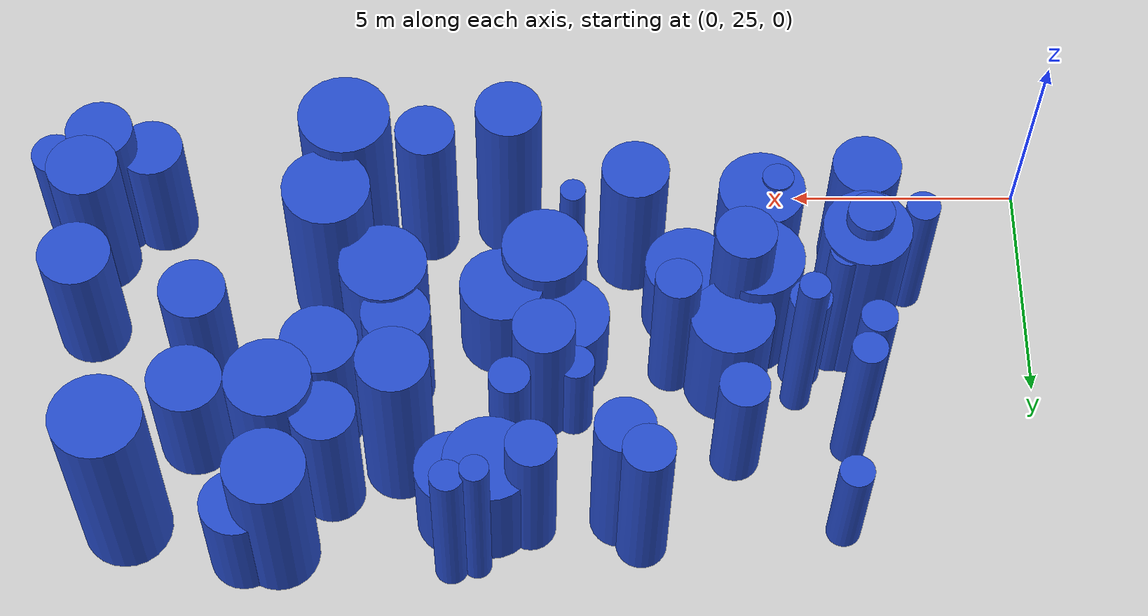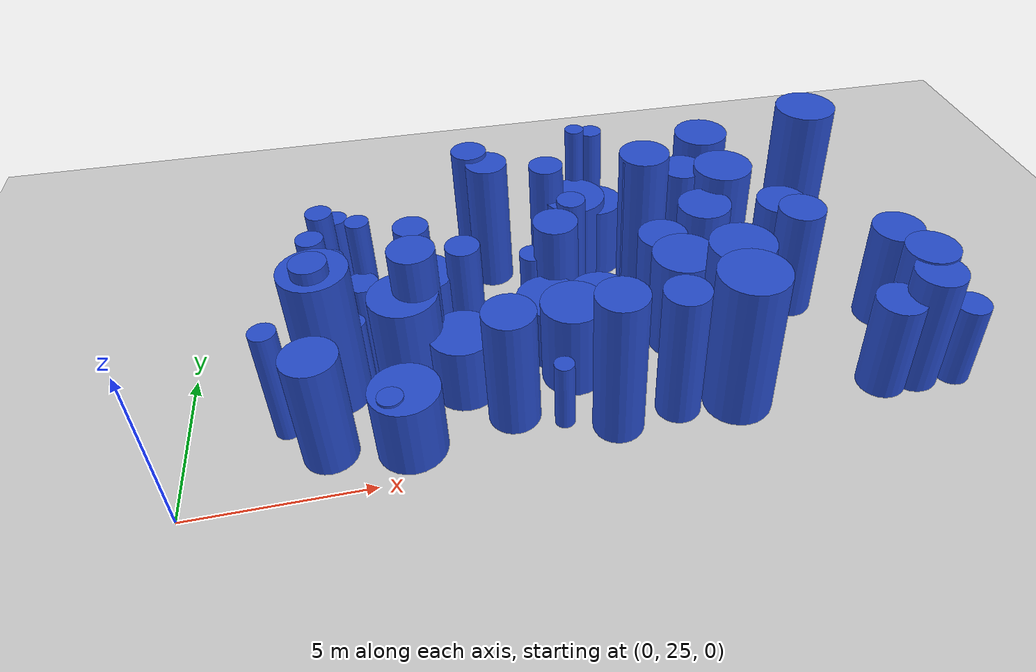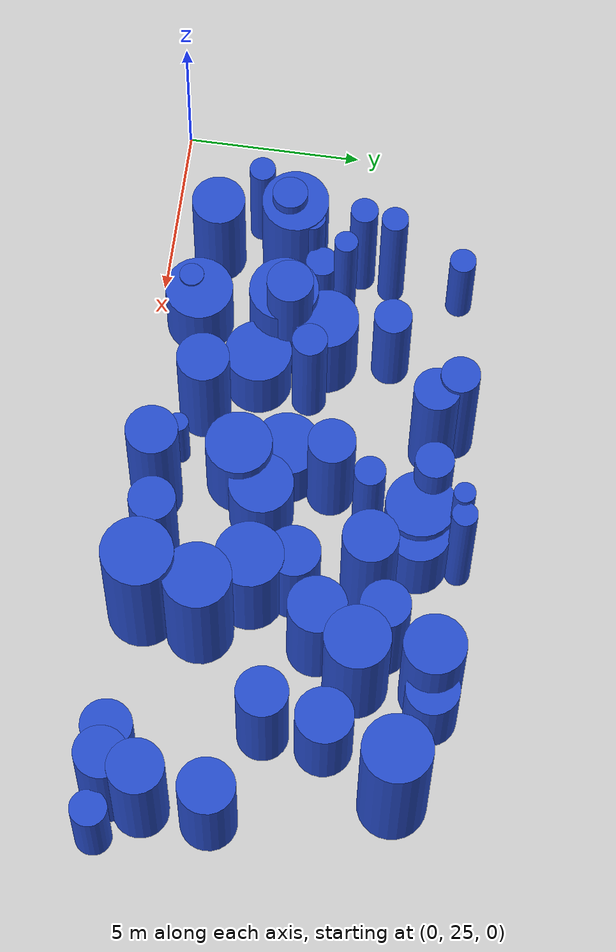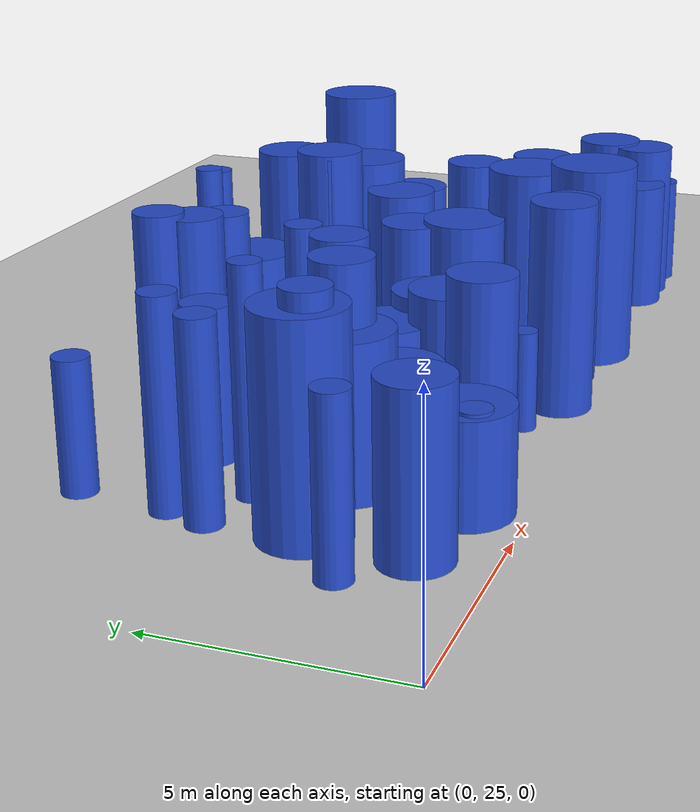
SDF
<sdf version="1.6">
 <world name="default">
  <model name="ground_plane">
   <static>1</static>
   <link name="link">
    <collision name="collision">
     <geometry><plane><normal>0 0 1</normal><size>100 100</size></plane></geometry>
     <surface><friction><ode><mu>100</mu><mu2>50</mu2></ode></friction></surface>
    </collision>
    <visual name="visual">
     <cast_shadows>0</cast_shadows>
     <geometry><plane><normal>0 0 1</normal><size>100 100</size></plane></geometry>
     <material>
      <script><uri>file://media/materials/scripts/gazebo.material</uri><name>Gazebo/Grey</name></script>
     </material>
    </visual>
   </link>
  </model>
  <model name="12">
   <static>0</static>
   <link name="link">
    <inertial>
     <mass>2</mass>
     <inertia><ixx>1.27619</ixx><ixy>0</ixy><ixz>0</ixz><iyy>1.27619</iyy><iyz>0</iyz><izz>0.925435</izz></inertia>
    </inertial>
    <collision name="collision">
     <geometry><cylinder><length>2.20927</length><radius>0.961995</radius></cylinder></geometry>
     <surface><contact><collide_without_contact>1</collide_without_contact></contact></surface>
    </collision>
    <visual name="visual">
     <geometry><cylinder><length>2.20927</length><radius>0.961995</radius></cylinder></geometry>
     <material>
      <script><uri>file://media/materials/scripts/gazebo.material</uri><name>Gazebo/Blue</name></script>
     </material>
    </visual>
    <gravity>0</gravity>
   </link>
   <pose>5.95857 26.1958 1.10463 0 -0 0</pose>
  </model>
  <model name="17">
   <static>0</static>
   <link name="link">
    <inertial>
     <mass>2</mass>
     <inertia><ixx>2.36762</ixx><ixy>0</ixy><ixz>0</ixz><iyy>2.36762</iyy><iyz>0</iyz><izz>0.56369</izz></inertia>
    </inertial>
    <collision name="collision">
     <geometry><cylinder><length>3.53761</length><radius>0.750793</radius></cylinder></geometry>
     <surface><contact><collide_without_contact>1</collide_without_contact></contact></surface>
    </collision>
    <visual name="visual">
     <geometry><cylinder><length>3.53761</length><radius>0.750793</radius></cylinder></geometry>
     <material>
      <script><uri>file://media/materials/scripts/gazebo.material</uri><name>Gazebo/Blue</name></script>
     </material>
    </visual>
    <gravity>0</gravity>
   </link>
   <pose>3.8069 26.4539 1.7688 0 -0 0</pose>
  </model>
  <model name="19">
   <static>0</static>
   <link name="link">
    <inertial>
     <mass>2</mass>
     <inertia><ixx>1.67962</ixx><ixy>0</ixy><ixz>0</ixz><iyy>1.67962</iyy><iyz>0</iyz><izz>0.646256</izz></inertia>
    </inertial>
    <collision name="collision">
     <geometry><cylinder><length>2.85288</length><radius>0.803901</radius></cylinder></geometry>
     <surface><contact><collide_without_contact>1</collide_without_contact></contact></surface>
    </collision>
    <visual name="visual">
     <geometry><cylinder><length>2.85288</length><radius>0.803901</radius></cylinder></geometry>
     <material>
      <script><uri>file://media/materials/scripts/gazebo.material</uri><name>Gazebo/Blue</name></script>
     </material>
    </visual>
    <gravity>0</gravity>
   </link>
   <pose>18.2862 31.439 1.42644 0 -0 0</pose>
  </model>
  <model name="31">
   <static>0</static>
   <link name="link">
    <inertial>
     <mass>2</mass>
     <inertia><ixx>4.54322</ixx><ixy>0</ixy><ixz>0</ixz><iyy>4.54322</iyy><iyz>0</iyz><izz>0.904882</izz></inertia>
    </inertial>
    <collision name="collision">
     <geometry><cylinder><length>4.95426</length><radius>0.951253</radius></cylinder></geometry>
     <surface><contact><collide_without_contact>1</collide_without_contact></contact></surface>
    </collision>
    <visual name="visual">
     <geometry><cylinder><length>4.95426</length><radius>0.951253</radius></cylinder></geometry>
     <material>
      <script><uri>file://media/materials/scripts/gazebo.material</uri><name>Gazebo/Blue</name></script>
     </material>
    </visual>
    <gravity>0</gravity>
   </link>
   <pose>19.6267 33.4845 2.47713 0 -0 0</pose>
  </model>
  <model name="38">
   <static>0</static>
   <link name="link">
    <inertial>
     <mass>2</mass>
     <inertia>
      <ixx>0.928398</ixx>
      <ixy>0</ixy>
      <ixz>0</ixz>
      <iyy>0.928398</iyy>
      <iyz>0</iyz>
      <izz>0.123325</izz>
     </inertia>
    </inertial>
    <collision name="collision">
     <geometry><cylinder><length>2.28044</length><radius>0.351177</radius></cylinder></geometry>
     <surface><contact><collide_without_contact>1</collide_without_contact></contact></surface>
    </collision>
    <visual name="visual">
     <geometry><cylinder><length>2.28044</length><radius>0.351177</radius></cylinder></geometry>
     <material>
      <script><uri>file://media/materials/scripts/gazebo.material</uri><name>Gazebo/Blue</name></script>
     </material>
    </visual>
    <gravity>0</gravity>
   </link>
   <pose>5.59868 25.9297 1.14022 0 -0 0</pose>
  </model>
  <model name="43">
   <static>0</static>
   <link name="link">
    <inertial>
     <mass>2</mass>
     <inertia><ixx>1.11898</ixx><ixy>0</ixy><ixz>0</ixz><iyy>1.11898</iyy><iyz>0</iyz><izz>0.887933</izz></inertia>
    </inertial>
    <collision name="collision">
     <geometry><cylinder><length>2.01248</length><radius>0.942302</radius></cylinder></geometry>
     <surface><contact><collide_without_contact>1</collide_without_contact></contact></surface>
    </collision>
    <visual name="visual">
     <geometry><cylinder><length>2.01248</length><radius>0.942302</radius></cylinder></geometry>
     <material>
      <script><uri>file://media/materials/scripts/gazebo.material</uri><name>Gazebo/Blue</name></script>
     </material>
    </visual>
    <gravity>0</gravity>
   </link>
   <pose>10.2971 29.319 1.00624 0 -0 0</pose>
  </model>
  <model name="52">
   <static>0</static>
   <link name="link">
    <inertial>
     <mass>2</mass>
     <inertia>
      <ixx>3.67726</ixx>
      <ixy>0</ixy>
      <ixz>0</ixz>
      <iyy>3.67726</iyy>
      <iyz>0</iyz>
      <izz>0.0947076</izz>
     </inertia>
    </inertial>
    <collision name="collision">
     <geometry><cylinder><length>4.66685</length><radius>0.307746</radius></cylinder></geometry>
     <surface><contact><collide_without_contact>1</collide_without_contact></contact></surface>
    </collision>
    <visual name="visual">
     <geometry><cylinder><length>4.66685</length><radius>0.307746</radius></cylinder></geometry>
     <material>
      <script><uri>file://media/materials/scripts/gazebo.material</uri><name>Gazebo/Blue</name></script>
     </material>
    </visual>
    <gravity>0</gravity>
   </link>
   <pose>13.41 31.8865 2.33342 0 -0 0</pose>
  </model>
  <model name="53">
   <static>0</static>
   <link name="link">
    <inertial>
     <mass>2</mass>
     <inertia><ixx>2.60897</ixx><ixy>0</ixy><ixz>0</ixz><iyy>2.60897</iyy><iyz>0</iyz><izz>0.17796</izz></inertia>
    </inertial>
    <collision name="collision">
     <geometry><cylinder><length>3.88844</length><radius>0.421853</radius></cylinder></geometry>
     <surface><contact><collide_without_contact>1</collide_without_contact></contact></surface>
    </collision>
    <visual name="visual">
     <geometry><cylinder><length>3.88844</length><radius>0.421853</radius></cylinder></geometry>
     <material>
      <script><uri>file://media/materials/scripts/gazebo.material</uri><name>Gazebo/Blue</name></script>
     </material>
    </visual>
    <gravity>0</gravity>
   </link>
   <pose>16.5759 34.2285 1.94422 0 -0 0</pose>
  </model>
  <model name="61">
   <static>0</static>
   <link name="link">
    <inertial>
     <mass>2</mass>
     <inertia><ixx>2.9263</ixx><ixy>0</ixy><ixz>0</ixz><iyy>2.9263</iyy><iyz>0</iyz><izz>0.149705</izz></inertia>
    </inertial>
    <collision name="collision">
     <geometry><cylinder><length>4.13626</length><radius>0.386917</radius></cylinder></geometry>
     <surface><contact><collide_without_contact>1</collide_without_contact></contact></surface>
    </collision>
    <visual name="visual">
     <geometry><cylinder><length>4.13626</length><radius>0.386917</radius></cylinder></geometry>
     <material>
      <script><uri>file://media/materials/scripts/gazebo.material</uri><name>Gazebo/Blue</name></script>
     </material>
    </visual>
    <gravity>0</gravity>
   </link>
   <pose>3.87976 30.6038 2.06813 0 -0 0</pose>
  </model>
  <model name="65">
   <static>0</static>
   <link name="link">
    <inertial>
     <mass>2</mass>
     <inertia><ixx>4.07214</ixx><ixy>0</ixy><ixz>0</ixz><iyy>4.07214</iyy><iyz>0</iyz><izz>0.583035</izz></inertia>
    </inertial>
    <collision name="collision">
     <geometry><cylinder><length>4.76274</length><radius>0.763567</radius></cylinder></geometry>
     <surface><contact><collide_without_contact>1</collide_without_contact></contact></surface>
    </collision>
    <visual name="visual">
     <geometry><cylinder><length>4.76274</length><radius>0.763567</radius></cylinder></geometry>
     <material>
      <script><uri>file://media/materials/scripts/gazebo.material</uri><name>Gazebo/Blue</name></script>
     </material>
    </visual>
    <gravity>0</gravity>
   </link>
   <pose>13.8342 32.044 2.38137 0 -0 0</pose>
  </model>
  <model name="68">
   <static>0</static>
   <link name="link">
    <inertial>
     <mass>2</mass>
     <inertia><ixx>2.56035</ixx><ixy>0</ixy><ixz>0</ixz><iyy>2.56035</iyy><iyz>0</iyz><izz>0.482898</izz></inertia>
    </inertial>
    <collision name="collision">
     <geometry><cylinder><length>3.73007</length><radius>0.694909</radius></cylinder></geometry>
     <surface><contact><collide_without_contact>1</collide_without_contact></contact></surface>
    </collision>
    <visual name="visual">
     <geometry><cylinder><length>3.73007</length><radius>0.694909</radius></cylinder></geometry>
     <material>
      <script><uri>file://media/materials/scripts/gazebo.material</uri><name>Gazebo/Blue</name></script>
     </material>
    </visual>
    <gravity>0</gravity>
   </link>
   <pose>15.2838 32.6616 1.86504 0 -0 0</pose>
  </model>
  <model name="84">
   <static>0</static>
   <link name="link">
    <inertial>
     <mass>2</mass>
     <inertia><ixx>1.96542</ixx><ixy>0</ixy><ixz>0</ixz><iyy>1.96542</iyy><iyz>0</iyz><izz>0.55372</izz></inertia>
    </inertial>
    <collision name="collision">
     <geometry><cylinder><length>3.18298</length><radius>0.744123</radius></cylinder></geometry>
     <surface><contact><collide_without_contact>1</collide_without_contact></contact></surface>
    </collision>
    <visual name="visual">
     <geometry><cylinder><length>3.18298</length><radius>0.744123</radius></cylinder></geometry>
     <material>
      <script><uri>file://media/materials/scripts/gazebo.material</uri><name>Gazebo/Blue</name></script>
     </material>
    </visual>
    <gravity>0</gravity>
   </link>
   <pose>13.9097 30.0086 1.59149 0 -0 0</pose>
  </model>
  <model name="87">
   <static>0</static>
   <link name="link">
    <inertial>
     <mass>2</mass>
     <inertia><ixx>2.24731</ixx><ixy>0</ixy><ixz>0</ixz><iyy>2.24731</iyy><iyz>0</iyz><izz>0.904156</izz></inertia>
    </inertial>
    <collision name="collision">
     <geometry><cylinder><length>3.28198</length><radius>0.950871</radius></cylinder></geometry>
     <surface><contact><collide_without_contact>1</collide_without_contact></contact></surface>
    </collision>
    <visual name="visual">
     <geometry><cylinder><length>3.28198</length><radius>0.950871</radius></cylinder></geometry>
     <material>
      <script><uri>file://media/materials/scripts/gazebo.material</uri><name>Gazebo/Blue</name></script>
     </material>
    </visual>
    <gravity>0</gravity>
   </link>
   <pose>14.2112 28.8442 1.64099 0 -0 0</pose>
  </model>
  <model name="89">
   <static>0</static>
   <link name="link">
    <inertial>
     <mass>2</mass>
     <inertia><ixx>3.86103</ixx><ixy>0</ixy><ixz>0</ixz><iyy>3.86103</iyy><iyz>0</iyz><izz>0.517319</izz></inertia>
    </inertial>
    <collision name="collision">
     <geometry><cylinder><length>4.64911</length><radius>0.719249</radius></cylinder></geometry>
     <surface><contact><collide_without_contact>1</collide_without_contact></contact></surface>
    </collision>
    <visual name="visual">
     <geometry><cylinder><length>4.64911</length><radius>0.719249</radius></cylinder></geometry>
     <material>
      <script><uri>file://media/materials/scripts/gazebo.material</uri><name>Gazebo/Blue</name></script>
     </material>
    </visual>
    <gravity>0</gravity>
   </link>
   <pose>11.5608 25.8149 2.32455 0 -0 0</pose>
  </model>
  <model name="112">
   <static>0</static>
   <link name="link">
    <inertial>
     <mass>2</mass>
     <inertia><ixx>2.22524</ixx><ixy>0</ixy><ixz>0</ixz><iyy>2.22524</iyy><iyz>0</iyz><izz>0.133987</izz></inertia>
    </inertial>
    <collision name="collision">
     <geometry><cylinder><length>3.59854</length><radius>0.366043</radius></cylinder></geometry>
     <surface><contact><collide_without_contact>1</collide_without_contact></contact></surface>
    </collision>
    <visual name="visual">
     <geometry><cylinder><length>3.59854</length><radius>0.366043</radius></cylinder></geometry>
     <material>
      <script><uri>file://media/materials/scripts/gazebo.material</uri><name>Gazebo/Blue</name></script>
     </material>
    </visual>
    <gravity>0</gravity>
   </link>
   <pose>2.67065 27.5483 1.79927 0 -0 0</pose>
  </model>
  <model name="115">
   <static>0</static>
   <link name="link">
    <inertial>
     <mass>2</mass>
     <inertia><ixx>3.11202</ixx><ixy>0</ixy><ixz>0</ixz><iyy>3.11202</iyy><iyz>0</iyz><izz>0.73503</izz></inertia>
    </inertial>
    <collision name="collision">
     <geometry><cylinder><length>4.05796</length><radius>0.857339</radius></cylinder></geometry>
     <surface><contact><collide_without_contact>1</collide_without_contact></contact></surface>
    </collision>
    <visual name="visual">
     <geometry><cylinder><length>4.05796</length><radius>0.857339</radius></cylinder></geometry>
     <material>
      <script><uri>file://media/materials/scripts/gazebo.material</uri><name>Gazebo/Blue</name></script>
     </material>
    </visual>
    <gravity>0</gravity>
   </link>
   <pose>16.3497 34.101 2.02898 0 -0 0</pose>
  </model>
  <model name="117">
   <static>0</static>
   <link name="link">
    <inertial>
     <mass>2</mass>
     <inertia><ixx>2.7452</ixx><ixy>0</ixy><ixz>0</ixz><iyy>2.7452</iyy><iyz>0</iyz><izz>0.535852</izz></inertia>
    </inertial>
    <collision name="collision">
     <geometry><cylinder><length>3.85534</length><radius>0.732019</radius></cylinder></geometry>
     <surface><contact><collide_without_contact>1</collide_without_contact></contact></surface>
    </collision>
    <visual name="visual">
     <geometry><cylinder><length>3.85534</length><radius>0.732019</radius></cylinder></geometry>
     <material>
      <script><uri>file://media/materials/scripts/gazebo.material</uri><name>Gazebo/Blue</name></script>
     </material>
    </visual>
    <gravity>0</gravity>
   </link>
   <pose>20.4326 25.8517 1.92767 0 -0 0</pose>
  </model>
  <model name="123">
   <static>0</static>
   <link name="link">
    <inertial>
     <mass>2</mass>
     <inertia><ixx>3.08274</ixx><ixy>0</ixy><ixz>0</ixz><iyy>3.08274</iyy><iyz>0</iyz><izz>0.826748</izz></inertia>
    </inertial>
    <collision name="collision">
     <geometry><cylinder><length>4.00202</length><radius>0.909257</radius></cylinder></geometry>
     <surface><contact><collide_without_contact>1</collide_without_contact></contact></surface>
    </collision>
    <visual name="visual">
     <geometry><cylinder><length>4.00202</length><radius>0.909257</radius></cylinder></geometry>
     <material>
      <script><uri>file://media/materials/scripts/gazebo.material</uri><name>Gazebo/Blue</name></script>
     </material>
    </visual>
    <gravity>0</gravity>
   </link>
   <pose>16.4086 32.052 2.00101 0 -0 0</pose>
  </model>
  <model name="135">
   <static>0</static>
   <link name="link">
    <inertial>
     <mass>2</mass>
     <inertia><ixx>2.66442</ixx><ixy>0</ixy><ixz>0</ixz><iyy>2.66442</iyy><iyz>0</iyz><izz>0.539051</izz></inertia>
    </inertial>
    <collision name="collision">
     <geometry><cylinder><length>3.7907</length><radius>0.734201</radius></cylinder></geometry>
     <surface><contact><collide_without_contact>1</collide_without_contact></contact></surface>
    </collision>
    <visual name="visual">
     <geometry><cylinder><length>3.7907</length><radius>0.734201</radius></cylinder></geometry>
     <material>
      <script><uri>file://media/materials/scripts/gazebo.material</uri><name>Gazebo/Blue</name></script>
     </material>
    </visual>
    <gravity>0</gravity>
   </link>
   <pose>8.82373 26.7736 1.89535 0 -0 0</pose>
  </model>
  <model name="151">
   <static>0</static>
   <link name="link">
    <inertial>
     <mass>2</mass>
     <inertia><ixx>2.48162</ixx><ixy>0</ixy><ixz>0</ixz><iyy>2.48162</iyy><iyz>0</iyz><izz>0.443338</izz></inertia>
    </inertial>
    <collision name="collision">
     <geometry><cylinder><length>3.68235</length><radius>0.665836</radius></cylinder></geometry>
     <surface><contact><collide_without_contact>1</collide_without_contact></contact></surface>
    </collision>
    <visual name="visual">
     <geometry><cylinder><length>3.68235</length><radius>0.665836</radius></cylinder></geometry>
     <material>
      <script><uri>file://media/materials/scripts/gazebo.material</uri><name>Gazebo/Blue</name></script>
     </material>
    </visual>
    <gravity>0</gravity>
   </link>
   <pose>10.7873 30.6197 1.84118 0 -0 0</pose>
  </model>
  <model name="164">
   <static>0</static>
   <link name="link">
    <inertial>
     <mass>2</mass>
     <inertia><ixx>1.12381</ixx><ixy>0</ixy><ixz>0</ixz><iyy>1.12381</iyy><iyz>0</iyz><izz>0.161791</izz></inertia>
    </inertial>
    <collision name="collision">
     <geometry><cylinder><length>2.5015</length><radius>0.402233</radius></cylinder></geometry>
     <surface><contact><collide_without_contact>1</collide_without_contact></contact></surface>
    </collision>
    <visual name="visual">
     <geometry><cylinder><length>2.5015</length><radius>0.402233</radius></cylinder></geometry>
     <material>
      <script><uri>file://media/materials/scripts/gazebo.material</uri><name>Gazebo/Blue</name></script>
     </material>
    </visual>
    <gravity>0</gravity>
   </link>
   <pose>10.107 30.8018 1.25075 0 -0 0</pose>
  </model>
  <model name="167">
   <static>0</static>
   <link name="link">
    <inertial>
     <mass>2</mass>
     <inertia><ixx>3.80657</ixx><ixy>0</ixy><ixz>0</ixz><iyy>3.80657</iyy><iyz>0</iyz><izz>0.106043</izz></inertia>
    </inertial>
    <collision name="collision">
     <geometry><cylinder><length>4.74566</length><radius>0.325643</radius></cylinder></geometry>
     <surface><contact><collide_without_contact>1</collide_without_contact></contact></surface>
    </collision>
    <visual name="visual">
     <geometry><cylinder><length>4.74566</length><radius>0.325643</radius></cylinder></geometry>
     <material>
      <script><uri>file://media/materials/scripts/gazebo.material</uri><name>Gazebo/Blue</name></script>
     </material>
    </visual>
    <gravity>0</gravity>
   </link>
   <pose>5.24562 30.2544 2.37283 0 -0 0</pose>
  </model>
  <model name="169">
   <static>0</static>
   <link name="link">
    <inertial>
     <mass>2</mass>
     <inertia><ixx>1.68061</ixx><ixy>0</ixy><ixz>0</ixz><iyy>1.68061</iyy><iyz>0</iyz><izz>0.872903</izz></inertia>
    </inertial>
    <collision name="collision">
     <geometry><cylinder><length>2.73221</length><radius>0.934293</radius></cylinder></geometry>
     <surface><contact><collide_without_contact>1</collide_without_contact></contact></surface>
    </collision>
    <visual name="visual">
     <geometry><cylinder><length>2.73221</length><radius>0.934293</radius></cylinder></geometry>
     <material>
      <script><uri>file://media/materials/scripts/gazebo.material</uri><name>Gazebo/Blue</name></script>
     </material>
    </visual>
    <gravity>0</gravity>
   </link>
   <pose>10.7726 28.0436 1.3661 0 -0 0</pose>
  </model>
  <model name="172">
   <static>0</static>
   <link name="link">
    <inertial>
     <mass>2</mass>
     <inertia><ixx>1.40764</ixx><ixy>0</ixy><ixz>0</ixz><iyy>1.40764</iyy><iyz>0</iyz><izz>0.557029</izz></inertia>
    </inertial>
    <collision name="collision">
     <geometry><cylinder><length>2.60284</length><radius>0.746344</radius></cylinder></geometry>
     <surface><contact><collide_without_contact>1</collide_without_contact></contact></surface>
    </collision>
    <visual name="visual">
     <geometry><cylinder><length>2.60284</length><radius>0.746344</radius></cylinder></geometry>
     <material>
      <script><uri>file://media/materials/scripts/gazebo.material</uri><name>Gazebo/Blue</name></script>
     </material>
    </visual>
    <gravity>0</gravity>
   </link>
   <pose>17.0703 34.1902 1.30142 0 -0 0</pose>
  </model>
  <model name="176">
   <static>0</static>
   <link name="link">
    <inertial>
     <mass>2</mass>
     <inertia><ixx>3.34478</ixx><ixy>0</ixy><ixz>0</ixz><iyy>3.34478</iyy><iyz>0</iyz><izz>0.153505</izz></inertia>
    </inertial>
    <collision name="collision">
     <geometry><cylinder><length>4.42811</length><radius>0.391798</radius></cylinder></geometry>
     <surface><contact><collide_without_contact>1</collide_without_contact></contact></surface>
    </collision>
    <visual name="visual">
     <geometry><cylinder><length>4.42811</length><radius>0.391798</radius></cylinder></geometry>
     <material>
      <script><uri>file://media/materials/scripts/gazebo.material</uri><name>Gazebo/Blue</name></script>
     </material>
    </visual>
    <gravity>0</gravity>
   </link>
   <pose>4.45821 29.1911 2.21406 0 -0 0</pose>
  </model>
  <model name="205">
   <static>0</static>
   <link name="link">
    <inertial>
     <mass>2</mass>
     <inertia><ixx>2.73787</ixx><ixy>0</ixy><ixz>0</ixz><iyy>2.73787</iyy><iyz>0</iyz><izz>0.243037</izz></inertia>
    </inertial>
    <collision name="collision">
     <geometry><cylinder><length>3.96209</length><radius>0.492987</radius></cylinder></geometry>
     <surface><contact><collide_without_contact>1</collide_without_contact></contact></surface>
    </collision>
    <visual name="visual">
     <geometry><cylinder><length>3.96209</length><radius>0.492987</radius></cylinder></geometry>
     <material>
      <script><uri>file://media/materials/scripts/gazebo.material</uri><name>Gazebo/Blue</name></script>
     </material>
    </visual>
    <gravity>0</gravity>
   </link>
   <pose>7.9789 29.6226 1.98104 0 -0 0</pose>
  </model>
  <model name="207">
   <static>0</static>
   <link name="link">
    <inertial>
     <mass>2</mass>
     <inertia><ixx>1.32975</ixx><ixy>0</ixy><ixz>0</ixz><iyy>1.32975</iyy><iyz>0</iyz><izz>0.829033</izz></inertia>
    </inertial>
    <collision name="collision">
     <geometry><cylinder><length>2.34338</length><radius>0.910512</radius></cylinder></geometry>
     <surface><contact><collide_without_contact>1</collide_without_contact></contact></surface>
    </collision>
    <visual name="visual">
     <geometry><cylinder><length>2.34338</length><radius>0.910512</radius></cylinder></geometry>
     <material>
      <script><uri>file://media/materials/scripts/gazebo.material</uri><name>Gazebo/Blue</name></script>
     </material>
    </visual>
    <gravity>0</gravity>
   </link>
   <pose>11.6997 28.7927 1.17169 0 -0 0</pose>
  </model>
  <model name="214">
   <static>0</static>
   <link name="link">
    <inertial>
     <mass>2</mass>
     <inertia>
      <ixx>0.838629</ixx>
      <ixy>0</ixy>
      <ixz>0</ixz>
      <iyy>0.838629</iyy>
      <iyz>0</iyz>
      <izz>0.0814457</izz>
     </inertia>
    </inertial>
    <collision name="collision">
     <geometry><cylinder><length>2.18802</length><radius>0.285387</radius></cylinder></geometry>
     <surface><contact><collide_without_contact>1</collide_without_contact></contact></surface>
    </collision>
    <visual name="visual">
     <geometry><cylinder><length>2.18802</length><radius>0.285387</radius></cylinder></geometry>
     <material>
      <script><uri>file://media/materials/scripts/gazebo.material</uri><name>Gazebo/Blue</name></script>
     </material>
    </visual>
    <gravity>0</gravity>
   </link>
   <pose>10.1481 26.2454 1.09401 0 -0 0</pose>
  </model>
  <model name="216">
   <static>0</static>
   <link name="link">
    <inertial>
     <mass>2</mass>
     <inertia><ixx>2.85535</ixx><ixy>0</ixy><ixz>0</ixz><iyy>2.85535</iyy><iyz>0</iyz><izz>0.60102</izz></inertia>
    </inertial>
    <collision name="collision">
     <geometry><cylinder><length>3.91523</length><radius>0.775255</radius></cylinder></geometry>
     <surface><contact><collide_without_contact>1</collide_without_contact></contact></surface>
    </collision>
    <visual name="visual">
     <geometry><cylinder><length>3.91523</length><radius>0.775255</radius></cylinder></geometry>
     <material>
      <script><uri>file://media/materials/scripts/gazebo.material</uri><name>Gazebo/Blue</name></script>
     </material>
    </visual>
    <gravity>0</gravity>
   </link>
   <pose>20.7043 26.813 1.95761 0 -0 0</pose>
  </model>
  <model name="234">
   <static>0</static>
   <link name="link">
    <inertial>
     <mass>2</mass>
     <inertia><ixx>1.98978</ixx><ixy>0</ixy><ixz>0</ixz><iyy>1.98978</iyy><iyz>0</iyz><izz>0.285191</izz></inertia>
    </inertial>
    <collision name="collision">
     <geometry><cylinder><length>3.32913</length><radius>0.534033</radius></cylinder></geometry>
     <surface><contact><collide_without_contact>1</collide_without_contact></contact></surface>
    </collision>
    <visual name="visual">
     <geometry><cylinder><length>3.32913</length><radius>0.534033</radius></cylinder></geometry>
     <material>
      <script><uri>file://media/materials/scripts/gazebo.material</uri><name>Gazebo/Blue</name></script>
     </material>
    </visual>
    <gravity>0</gravity>
   </link>
   <pose>6.63154 31.786 1.66456 0 -0 0</pose>
  </model>
  <model name="235">
   <static>0</static>
   <link name="link">
    <inertial>
     <mass>2</mass>
     <inertia><ixx>1.8841</ixx><ixy>0</ixy><ixz>0</ixz><iyy>1.8841</iyy><iyz>0</iyz><izz>0.813748</izz></inertia>
    </inertial>
    <collision name="collision">
     <geometry><cylinder><length>2.97713</length><radius>0.90208</radius></cylinder></geometry>
     <surface><contact><collide_without_contact>1</collide_without_contact></contact></surface>
    </collision>
    <visual name="visual">
     <geometry><cylinder><length>2.97713</length><radius>0.90208</radius></cylinder></geometry>
     <material>
      <script><uri>file://media/materials/scripts/gazebo.material</uri><name>Gazebo/Blue</name></script>
     </material>
    </visual>
    <gravity>0</gravity>
   </link>
   <pose>6.79201 29.9496 1.48857 0 -0 0</pose>
  </model>
  <model name="237">
   <static>0</static>
   <link name="link">
    <inertial>
     <mass>2</mass>
     <inertia><ixx>1.7914</ixx><ixy>0</ixy><ixz>0</ixz><iyy>1.7914</iyy><iyz>0</iyz><izz>0.206245</izz></inertia>
    </inertial>
    <collision name="collision">
     <geometry><cylinder><length>3.18272</length><radius>0.454142</radius></cylinder></geometry>
     <surface><contact><collide_without_contact>1</collide_without_contact></contact></surface>
    </collision>
    <visual name="visual">
     <geometry><cylinder><length>3.18272</length><radius>0.454142</radius></cylinder></geometry>
     <material>
      <script><uri>file://media/materials/scripts/gazebo.material</uri><name>Gazebo/Blue</name></script>
     </material>
    </visual>
    <gravity>0</gravity>
   </link>
   <pose>5.1388 29.5836 1.59136 0 -0 0</pose>
  </model>
  <model name="253">
   <static>0</static>
   <link name="link">
    <inertial>
     <mass>2</mass>
     <inertia><ixx>1.30809</ixx><ixy>0</ixy><ixz>0</ixz><iyy>1.30809</iyy><iyz>0</iyz><izz>0.262137</izz></inertia>
    </inertial>
    <collision name="collision">
     <geometry><cylinder><length>2.65746</length><radius>0.511993</radius></cylinder></geometry>
     <surface><contact><collide_without_contact>1</collide_without_contact></contact></surface>
    </collision>
    <visual name="visual">
     <geometry><cylinder><length>2.65746</length><radius>0.511993</radius></cylinder></geometry>
     <material>
      <script><uri>file://media/materials/scripts/gazebo.material</uri><name>Gazebo/Blue</name></script>
     </material>
    </visual>
    <gravity>0</gravity>
   </link>
   <pose>21.6149 25.6602 1.32873 0 -0 0</pose>
  </model>
  <model name="255">
   <static>0</static>
   <link name="link">
    <inertial>
     <mass>2</mass>
     <inertia><ixx>4.07372</ixx><ixy>0</ixy><ixz>0</ixz><iyy>4.07372</iyy><iyz>0</iyz><izz>0.980066</izz></inertia>
    </inertial>
    <collision name="collision">
     <geometry><cylinder><length>4.63704</length><radius>0.989983</radius></cylinder></geometry>
     <surface><contact><collide_without_contact>1</collide_without_contact></contact></surface>
    </collision>
    <visual name="visual">
     <geometry><cylinder><length>4.63704</length><radius>0.989983</radius></cylinder></geometry>
     <material>
      <script><uri>file://media/materials/scripts/gazebo.material</uri><name>Gazebo/Blue</name></script>
     </material>
    </visual>
    <gravity>0</gravity>
   </link>
   <pose>15.0769 25.978 2.31852 0 -0 0</pose>
  </model>
  <model name="286">
   <static>0</static>
   <link name="link">
    <inertial>
     <mass>2</mass>
     <inertia><ixx>1.85627</ixx><ixy>0</ixy><ixz>0</ixz><iyy>1.85627</iyy><iyz>0</iyz><izz>0.506401</izz></inertia>
    </inertial>
    <collision name="collision">
     <geometry><cylinder><length>3.10136</length><radius>0.711618</radius></cylinder></geometry>
     <surface><contact><collide_without_contact>1</collide_without_contact></contact></surface>
    </collision>
    <visual name="visual">
     <geometry><cylinder><length>3.10136</length><radius>0.711618</radius></cylinder></geometry>
     <material>
      <script><uri>file://media/materials/scripts/gazebo.material</uri><name>Gazebo/Blue</name></script>
     </material>
    </visual>
    <gravity>0</gravity>
   </link>
   <pose>19.4248 25.8 1.55068 0 -0 0</pose>
  </model>
  <model name="294">
   <static>0</static>
   <link name="link">
    <inertial>
     <mass>2</mass>
     <inertia><ixx>3.19975</ixx><ixy>0</ixy><ixz>0</ixz><iyy>3.19975</iyy><iyz>0</iyz><izz>0.419793</izz></inertia>
    </inertial>
    <collision name="collision">
     <geometry><cylinder><length>4.23546</length><radius>0.647914</radius></cylinder></geometry>
     <surface><contact><collide_without_contact>1</collide_without_contact></contact></surface>
    </collision>
    <visual name="visual">
     <geometry><cylinder><length>4.23546</length><radius>0.647914</radius></cylinder></geometry>
     <material>
      <script><uri>file://media/materials/scripts/gazebo.material</uri><name>Gazebo/Blue</name></script>
     </material>
    </visual>
    <gravity>0</gravity>
   </link>
   <pose>13.3615 26.0923 2.11773 0 -0 0</pose>
  </model>
  <model name="303">
   <static>0</static>
   <link name="link">
    <inertial>
     <mass>2</mass>
     <inertia><ixx>3.72674</ixx><ixy>0</ixy><ixz>0</ixz><iyy>3.72674</iyy><iyz>0</iyz><izz>0.422869</izz></inertia>
    </inertial>
    <collision name="collision">
     <geometry><cylinder><length>4.59258</length><radius>0.650284</radius></cylinder></geometry>
     <surface><contact><collide_without_contact>1</collide_without_contact></contact></surface>
    </collision>
    <visual name="visual">
     <geometry><cylinder><length>4.59258</length><radius>0.650284</radius></cylinder></geometry>
     <material>
      <script><uri>file://media/materials/scripts/gazebo.material</uri><name>Gazebo/Blue</name></script>
     </material>
    </visual>
    <gravity>0</gravity>
   </link>
   <pose>6.58295 28.8773 2.29629 0 -0 0</pose>
  </model>
  <model name="304">
   <static>0</static>
   <link name="link">
    <inertial>
     <mass>2</mass>
     <inertia><ixx>4.04615</ixx><ixy>0</ixy><ixz>0</ixz><iyy>4.04615</iyy><iyz>0</iyz><izz>0.242868</izz></inertia>
    </inertial>
    <collision name="collision">
     <geometry><cylinder><length>4.85266</length><radius>0.492816</radius></cylinder></geometry>
     <surface><contact><collide_without_contact>1</collide_without_contact></contact></surface>
    </collision>
    <visual name="visual">
     <geometry><cylinder><length>4.85266</length><radius>0.492816</radius></cylinder></geometry>
     <material>
      <script><uri>file://media/materials/scripts/gazebo.material</uri><name>Gazebo/Blue</name></script>
     </material>
    </visual>
    <gravity>0</gravity>
   </link>
   <pose>3.99543 28.518 2.42633 0 -0 0</pose>
  </model>
  <model name="306">
   <static>0</static>
   <link name="link">
    <inertial>
     <mass>2</mass>
     <inertia><ixx>3.21997</ixx><ixy>0</ixy><ixz>0</ixz><iyy>3.21997</iyy><iyz>0</iyz><izz>0.125411</izz></inertia>
    </inertial>
    <collision name="collision">
     <geometry><cylinder><length>4.35243</length><radius>0.354134</radius></cylinder></geometry>
     <surface><contact><collide_without_contact>1</collide_without_contact></contact></surface>
    </collision>
    <visual name="visual">
     <geometry><cylinder><length>4.35243</length><radius>0.354134</radius></cylinder></geometry>
     <material>
      <script><uri>file://media/materials/scripts/gazebo.material</uri><name>Gazebo/Blue</name></script>
     </material>
    </visual>
    <gravity>0</gravity>
   </link>
   <pose>12.698 34.4438 2.17621 0 -0 0</pose>
  </model>
  <model name="309">
   <static>0</static>
   <link name="link">
    <inertial>
     <mass>2</mass>
     <inertia><ixx>3.56719</ixx><ixy>0</ixy><ixz>0</ixz><iyy>3.56719</iyy><iyz>0</iyz><izz>0.891388</izz></inertia>
    </inertial>
    <collision name="collision">
     <geometry><cylinder><length>4.3277</length><radius>0.944133</radius></cylinder></geometry>
     <surface><contact><collide_without_contact>1</collide_without_contact></contact></surface>
    </collision>
    <visual name="visual">
     <geometry><cylinder><length>4.3277</length><radius>0.944133</radius></cylinder></geometry>
     <material>
      <script><uri>file://media/materials/scripts/gazebo.material</uri><name>Gazebo/Blue</name></script>
     </material>
    </visual>
    <gravity>0</gravity>
   </link>
   <pose>15.4058 27.6178 2.16385 0 -0 0</pose>
  </model>
  <model name="323">
   <static>0</static>
   <link name="link">
    <inertial>
     <mass>2</mass>
     <inertia>
      <ixx>0.999716</ixx>
      <ixy>0</ixy>
      <ixz>0</ixz>
      <iyy>0.999716</iyy>
      <iyz>0</iyz>
      <izz>0.106174</izz>
     </inertia>
    </inertial>
    <collision name="collision">
     <geometry><cylinder><length>2.38323</length><radius>0.325843</radius></cylinder></geometry>
     <surface><contact><collide_without_contact>1</collide_without_contact></contact></surface>
    </collision>
    <visual name="visual">
     <geometry><cylinder><length>2.38323</length><radius>0.325843</radius></cylinder></geometry>
     <material>
      <script><uri>file://media/materials/scripts/gazebo.material</uri><name>Gazebo/Blue</name></script>
     </material>
    </visual>
    <gravity>0</gravity>
   </link>
   <pose>4.78111 28.9099 1.19161 0 -0 0</pose>
  </model>
  <model name="329">
   <static>0</static>
   <link name="link">
    <inertial>
     <mass>2</mass>
     <inertia><ixx>3.45398</ixx><ixy>0</ixy><ixz>0</ixz><iyy>3.45398</iyy><iyz>0</iyz><izz>0.297511</izz></inertia>
    </inertial>
    <collision name="collision">
     <geometry><cylinder><length>4.45324</length><radius>0.545446</radius></cylinder></geometry>
     <surface><contact><collide_without_contact>1</collide_without_contact></contact></surface>
    </collision>
    <visual name="visual">
     <geometry><cylinder><length>4.45324</length><radius>0.545446</radius></cylinder></geometry>
     <material>
      <script><uri>file://media/materials/scripts/gazebo.material</uri><name>Gazebo/Blue</name></script>
     </material>
    </visual>
    <gravity>0</gravity>
   </link>
   <pose>8.68716 33.8544 2.22662 0 -0 0</pose>
  </model>
  <model name="331">
   <static>0</static>
   <link name="link">
    <inertial>
     <mass>2</mass>
     <inertia><ixx>1.19481</ixx><ixy>0</ixy><ixz>0</ixz><iyy>1.19481</iyy><iyz>0</iyz><izz>0.891115</izz></inertia>
    </inertial>
    <collision name="collision">
     <geometry><cylinder><length>2.12026</length><radius>0.943989</radius></cylinder></geometry>
     <surface><contact><collide_without_contact>1</collide_without_contact></contact></surface>
    </collision>
    <visual name="visual">
     <geometry><cylinder><length>2.12026</length><radius>0.943989</radius></cylinder></geometry>
     <material>
      <script><uri>file://media/materials/scripts/gazebo.material</uri><name>Gazebo/Blue</name></script>
     </material>
    </visual>
    <gravity>0</gravity>
   </link>
   <pose>7.64255 28.1315 1.06013 0 -0 0</pose>
  </model>
  <model name="337">
   <static>0</static>
   <link name="link">
    <inertial>
     <mass>2</mass>
     <inertia>
      <ixx>3.45388</ixx>
      <ixy>0</ixy>
      <ixz>0</ixz>
      <iyy>3.45388</iyy>
      <iyz>0</iyz>
      <izz>0.0903584</izz>
     </inertia>
    </inertial>
    <collision name="collision">
     <geometry><cylinder><length>4.52241</length><radius>0.300597</radius></cylinder></geometry>
     <surface><contact><collide_without_contact>1</collide_without_contact></contact></surface>
    </collision>
    <visual name="visual">
     <geometry><cylinder><length>4.52241</length><radius>0.300597</radius></cylinder></geometry>
     <material>
      <script><uri>file://media/materials/scripts/gazebo.material</uri><name>Gazebo/Blue</name></script>
     </material>
    </visual>
    <gravity>0</gravity>
   </link>
   <pose>12.1512 34.3643 2.26121 0 -0 0</pose>
  </model>
  <model name="341">
   <static>0</static>
   <link name="link">
    <inertial>
     <mass>2</mass>
     <inertia><ixx>2.27249</ixx><ixy>0</ixy><ixz>0</ixz><iyy>2.27249</iyy><iyz>0</iyz><izz>0.190922</izz></inertia>
    </inertial>
    <collision name="collision">
     <geometry><cylinder><length>3.61417</length><radius>0.436947</radius></cylinder></geometry>
     <surface><contact><collide_without_contact>1</collide_without_contact></contact></surface>
    </collision>
    <visual name="visual">
     <geometry><cylinder><length>3.61417</length><radius>0.436947</radius></cylinder></geometry>
     <material>
      <script><uri>file://media/materials/scripts/gazebo.material</uri><name>Gazebo/Blue</name></script>
     </material>
    </visual>
    <gravity>0</gravity>
   </link>
   <pose>11.4889 31.7547 1.80708 0 -0 0</pose>
  </model>
  <model name="346">
   <static>0</static>
   <link name="link">
    <inertial>
     <mass>2</mass>
     <inertia><ixx>2.14517</ixx><ixy>0</ixy><ixz>0</ixz><iyy>2.14517</iyy><iyz>0</iyz><izz>0.62147</izz></inertia>
    </inertial>
    <collision name="collision">
     <geometry><cylinder><length>3.31762</length><radius>0.788334</radius></cylinder></geometry>
     <surface><contact><collide_without_contact>1</collide_without_contact></contact></surface>
    </collision>
    <visual name="visual">
     <geometry><cylinder><length>3.31762</length><radius>0.788334</radius></cylinder></geometry>
     <material>
      <script><uri>file://media/materials/scripts/gazebo.material</uri><name>Gazebo/Blue</name></script>
     </material>
    </visual>
    <gravity>0</gravity>
   </link>
   <pose>20.7872 28.6692 1.65881 0 -0 0</pose>
  </model>
  <model name="367">
   <static>0</static>
   <link name="link">
    <inertial>
     <mass>2</mass>
     <inertia><ixx>2.50924</ixx><ixy>0</ixy><ixz>0</ixz><iyy>2.50924</iyy><iyz>0</iyz><izz>0.515202</izz></inertia>
    </inertial>
    <collision name="collision">
     <geometry><cylinder><length>3.67557</length><radius>0.717776</radius></cylinder></geometry>
     <surface><contact><collide_without_contact>1</collide_without_contact></contact></surface>
    </collision>
    <visual name="visual">
     <geometry><cylinder><length>3.67557</length><radius>0.717776</radius></cylinder></geometry>
     <material>
      <script><uri>file://media/materials/scripts/gazebo.material</uri><name>Gazebo/Blue</name></script>
     </material>
    </visual>
    <gravity>0</gravity>
   </link>
   <pose>18.1501 29.7569 1.83779 0 -0 0</pose>
  </model>
  <model name="383">
   <static>0</static>
   <link name="link">
    <inertial>
     <mass>2</mass>
     <inertia><ixx>1.74411</ixx><ixy>0</ixy><ixz>0</ixz><iyy>1.74411</iyy><iyz>0</iyz><izz>0.956522</izz></inertia>
    </inertial>
    <collision name="collision">
     <geometry><cylinder><length>2.75592</length><radius>0.978019</radius></cylinder></geometry>
     <surface><contact><collide_without_contact>1</collide_without_contact></contact></surface>
    </collision>
    <visual name="visual">
     <geometry><cylinder><length>2.75592</length><radius>0.978019</radius></cylinder></geometry>
     <material>
      <script><uri>file://media/materials/scripts/gazebo.material</uri><name>Gazebo/Blue</name></script>
     </material>
    </visual>
    <gravity>0</gravity>
   </link>
   <pose>11.893 33.2284 1.37796 0 -0 0</pose>
  </model>
  <model name="392">
   <static>0</static>
   <link name="link">
    <inertial>
     <mass>2</mass>
     <inertia><ixx>3.24725</ixx><ixy>0</ixy><ixz>0</ixz><iyy>3.24725</iyy><iyz>0</iyz><izz>0.141178</izz></inertia>
    </inertial>
    <collision name="collision">
     <geometry><cylinder><length>4.36577</length><radius>0.375736</radius></cylinder></geometry>
     <surface><contact><collide_without_contact>1</collide_without_contact></contact></surface>
    </collision>
    <visual name="visual">
     <geometry><cylinder><length>4.36577</length><radius>0.375736</radius></cylinder></geometry>
     <material>
      <script><uri>file://media/materials/scripts/gazebo.material</uri><name>Gazebo/Blue</name></script>
     </material>
    </visual>
    <gravity>0</gravity>
   </link>
   <pose>4.15498 31.4947 2.18289 0 -0 0</pose>
  </model>
  <model name="400">
   <static>0</static>
   <link name="link">
    <inertial>
     <mass>2</mass>
     <inertia><ixx>2.29741</ixx><ixy>0</ixy><ixz>0</ixz><iyy>2.29741</iyy><iyz>0</iyz><izz>0.952383</izz></inertia>
    </inertial>
    <collision name="collision">
     <geometry><cylinder><length>3.30565</length><radius>0.975901</radius></cylinder></geometry>
     <surface><contact><collide_without_contact>1</collide_without_contact></contact></surface>
    </collision>
    <visual name="visual">
     <geometry><cylinder><length>3.30565</length><radius>0.975901</radius></cylinder></geometry>
     <material>
      <script><uri>file://media/materials/scripts/gazebo.material</uri><name>Gazebo/Blue</name></script>
     </material>
    </visual>
    <gravity>0</gravity>
   </link>
   <pose>6.20045 28.6567 1.65282 0 -0 0</pose>
  </model>
  <model name="402">
   <static>0</static>
   <link name="link">
    <inertial>
     <mass>2</mass>
     <inertia><ixx>2.63776</ixx><ixy>0</ixy><ixz>0</ixz><iyy>2.63776</iyy><iyz>0</iyz><izz>0.291879</izz></inertia>
    </inertial>
    <collision name="collision">
     <geometry><cylinder><length>3.86664</length><radius>0.540258</radius></cylinder></geometry>
     <surface><contact><collide_without_contact>1</collide_without_contact></contact></surface>
    </collision>
    <visual name="visual">
     <geometry><cylinder><length>3.86664</length><radius>0.540258</radius></cylinder></geometry>
     <material>
      <script><uri>file://media/materials/scripts/gazebo.material</uri><name>Gazebo/Blue</name></script>
     </material>
    </visual>
    <gravity>0</gravity>
   </link>
   <pose>11.0357 33.4563 1.93332 0 -0 0</pose>
  </model>
  <model name="403">
   <static>0</static>
   <link name="link">
    <inertial>
     <mass>2</mass>
     <inertia><ixx>1.36542</ixx><ixy>0</ixy><ixz>0</ixz><iyy>1.36542</iyy><iyz>0</iyz><izz>0.730583</izz></inertia>
    </inertial>
    <collision name="collision">
     <geometry><cylinder><length>2.44965</length><radius>0.854741</radius></cylinder></geometry>
     <surface><contact><collide_without_contact>1</collide_without_contact></contact></surface>
    </collision>
    <visual name="visual">
     <geometry><cylinder><length>2.44965</length><radius>0.854741</radius></cylinder></geometry>
     <material>
      <script><uri>file://media/materials/scripts/gazebo.material</uri><name>Gazebo/Blue</name></script>
     </material>
    </visual>
    <gravity>0</gravity>
   </link>
   <pose>12.6112 33.2878 1.22482 0 -0 0</pose>
  </model>
  <model name="412">
   <static>0</static>
   <link name="link">
    <inertial>
     <mass>2</mass>
     <inertia><ixx>3.79724</ixx><ixy>0</ixy><ixz>0</ixz><iyy>3.79724</iyy><iyz>0</iyz><izz>0.878321</izz></inertia>
    </inertial>
    <collision name="collision">
     <geometry><cylinder><length>4.48871</length><radius>0.937188</radius></cylinder></geometry>
     <surface><contact><collide_without_contact>1</collide_without_contact></contact></surface>
    </collision>
    <visual name="visual">
     <geometry><cylinder><length>4.48871</length><radius>0.937188</radius></cylinder></geometry>
     <material>
      <script><uri>file://media/materials/scripts/gazebo.material</uri><name>Gazebo/Blue</name></script>
     </material>
    </visual>
    <gravity>0</gravity>
   </link>
   <pose>4.04084 28.6784 2.24435 0 -0 0</pose>
  </model>
  <model name="448">
   <static>0</static>
   <link name="link">
    <inertial>
     <mass>2</mass>
     <inertia><ixx>2.36203</ixx><ixy>0</ixy><ixz>0</ixz><iyy>2.36203</iyy><iyz>0</iyz><izz>0.670298</izz></inertia>
    </inertial>
    <collision name="collision">
     <geometry><cylinder><length>3.4873</length><radius>0.818717</radius></cylinder></geometry>
     <surface><contact><collide_without_contact>1</collide_without_contact></contact></surface>
    </collision>
    <visual name="visual">
     <geometry><cylinder><length>3.4873</length><radius>0.818717</radius></cylinder></geometry>
     <material>
      <script><uri>file://media/materials/scripts/gazebo.material</uri><name>Gazebo/Blue</name></script>
     </material>
    </visual>
    <gravity>0</gravity>
   </link>
   <pose>15.4575 30.8521 1.74365 0 -0 0</pose>
  </model>
  <model name="470">
   <static>0</static>
   <link name="link">
    <inertial>
     <mass>2</mass>
     <inertia><ixx>3.30552</ixx><ixy>0</ixy><ixz>0</ixz><iyy>3.30552</iyy><iyz>0</iyz><izz>0.408253</izz></inertia>
    </inertial>
    <collision name="collision">
     <geometry><cylinder><length>4.31374</length><radius>0.638947</radius></cylinder></geometry>
     <surface><contact><collide_without_contact>1</collide_without_contact></contact></surface>
    </collision>
    <visual name="visual">
     <geometry><cylinder><length>4.31374</length><radius>0.638947</radius></cylinder></geometry>
     <material>
      <script><uri>file://media/materials/scripts/gazebo.material</uri><name>Gazebo/Blue</name></script>
     </material>
    </visual>
    <gravity>0</gravity>
   </link>
   <pose>9.14329 33.2703 2.15687 0 -0 0</pose>
  </model>
  <model name="479">
   <static>0</static>
   <link name="link">
    <inertial>
     <mass>2</mass>
     <inertia><ixx>1.38055</ixx><ixy>0</ixy><ixz>0</ixz><iyy>1.38055</iyy><iyz>0</iyz><izz>0.138331</izz></inertia>
    </inertial>
    <collision name="collision">
     <geometry><cylinder><length>2.80505</length><radius>0.371929</radius></cylinder></geometry>
     <surface><contact><collide_without_contact>1</collide_without_contact></contact></surface>
    </collision>
    <visual name="visual">
     <geometry><cylinder><length>2.80505</length><radius>0.371929</radius></cylinder></geometry>
     <material>
      <script><uri>file://media/materials/scripts/gazebo.material</uri><name>Gazebo/Blue</name></script>
     </material>
    </visual>
    <gravity>0</gravity>
   </link>
   <pose>4.36355 33.5051 1.40253 0 -0 0</pose>
  </model>
 </world>
</sdf>
